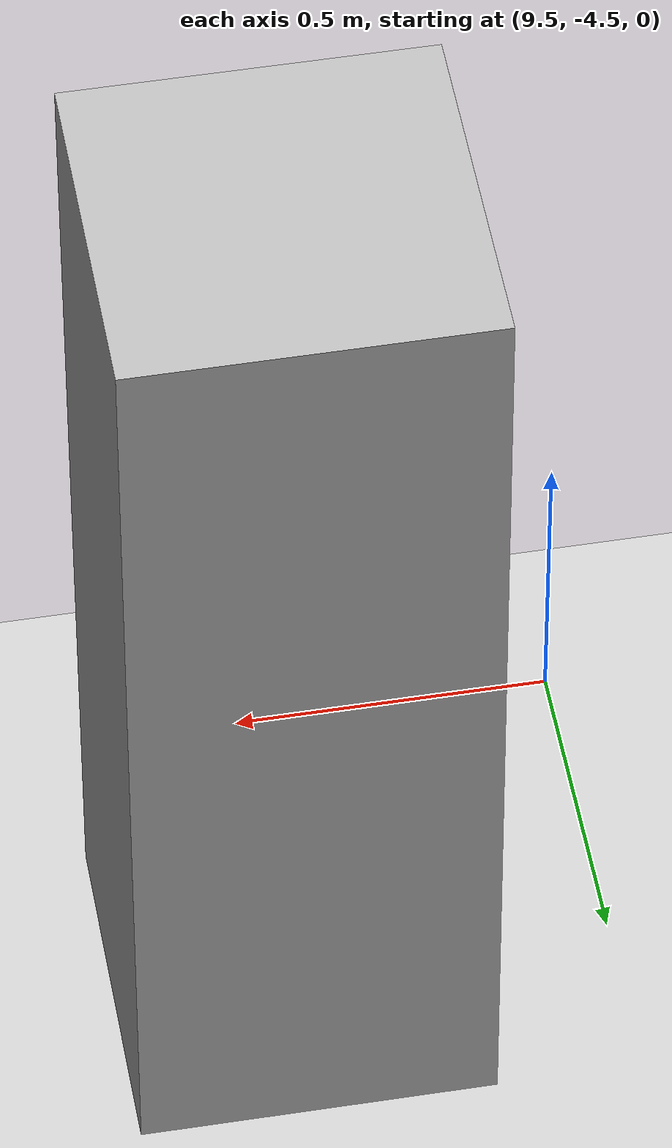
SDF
<?xml version="1.0"?>
<sdf version="1.6">
  <world name="v2-02-dynamic-crossing">
    <gravity>0 0 -9.81</gravity>
    <physics name="v2_deterministic" type="ode">
      <max_step_size>0.002</max_step_size>
      <real_time_update_rate>500</real_time_update_rate>
    </physics>
    <include>
      <uri>model://sun</uri>
    </include>
    <include>
      <uri>model://ground_plane</uri>
    </include>
    <model name="crossing-agent-1">
      <static>true</static>
      <pose>10.000000000 -4.000000000 0.850000000 0 0 1.570796327</pose>
      <link name="link">
        <collision name="collision">
          <geometry>
            <box>
              <size>0.550000 0.550000 1.700000</size>
            </box>
          </geometry>
        </collision>
        <visual name="visual">
          <geometry>
            <box>
              <size>0.550000 0.550000 1.700000</size>
            </box>
          </geometry>
        </visual>
      </link>
      <plugin name="crossing-agent-1_trajectory" filename="libv2_trajectory_actor_plugin.so">
        <loop>false</loop>
        <z>0.850000</z>
        <waypoint>
          <time>0.077474334</time>
          <x>10.000000000</x>
          <y>-4.000000000</y>
          <yaw>1.570796327</yaw>
        </waypoint>
        <waypoint>
          <time>8.077474334</time>
          <x>10.000000000</x>
          <y>4.000000000</y>
          <yaw>1.570796327</yaw>
        </waypoint>
      </plugin>
    </model>
  </world>
</sdf>
